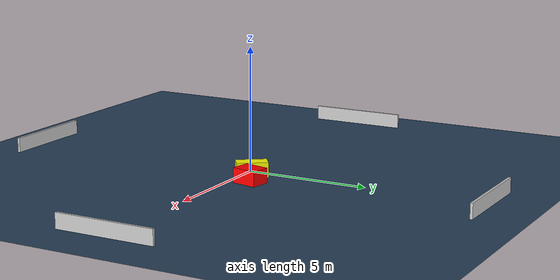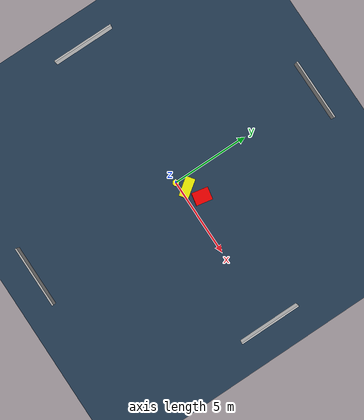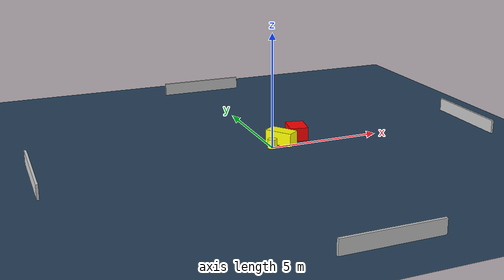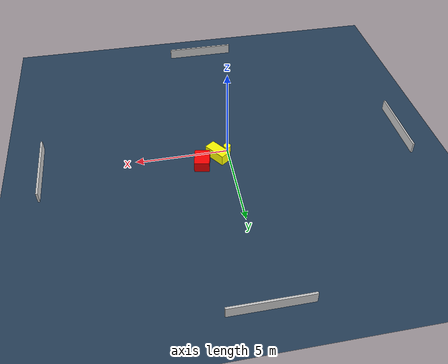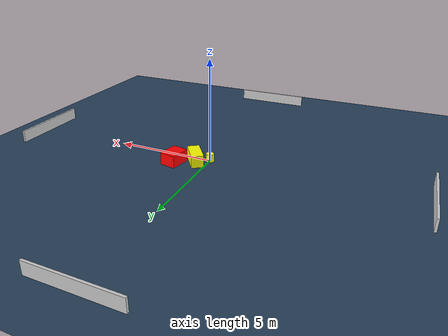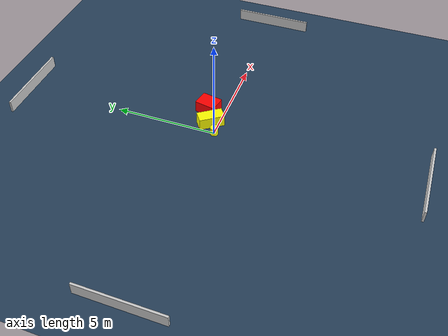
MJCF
<?xml version="1.0" ?>
<mujoco model="generated_environment">
  <option timestep="0.01" integrator="RK4" cone="elliptic"/>
  <default>
    <geom density="1"/>
  </default>
  <asset>
    <texture builtin="gradient" height="3072" name="skybox" rgb1="0.3 0.5 0.7" rgb2="0 0 0" type="skybox" width="512"/>
    <texture builtin="checker" height="300" name="groundplane" rgb1="0.2 0.3 0.4" rgb2="0.1 0.2 0.3" type="2d" width="300"/>
    <material name="groundplane" reflectance="0.2" texrepeat="5 5" texture="groundplane"/>
  </asset>
  <worldbody>
    <light dir="0 0 -1" directional="true" pos="0 0 1.5"/>
    <geom condim="3" friction="0.5 0.005 0.001" material="groundplane" name="floor" pos="0 0 0" size="0 0 0.05" type="plane"/>
    <body name="walls">
      <geom name="wall_1" condim="4" pos="-10.0 0.0 0.3" rgba="0.800000011920929 0.800000011920929 0.800000011920929 1.0" size="0.05 2.0 0.3" type="box"/>
      <geom name="wall_2" condim="4" pos="10.0 0.0 0.3" rgba="0.800000011920929 0.800000011920929 0.800000011920929 1.0" size="0.05 2.0 0.3" type="box"/>
      <geom name="wall_3" condim="4" pos="0.0 -10.0 0.3" rgba="0.800000011920929 0.800000011920929 0.800000011920929 1.0" size="2.0 0.05 0.3" type="box"/>
      <geom name="wall_4" condim="4" pos="0.0 10.0 0.3" rgba="0.800000011920929 0.800000011920929 0.800000011920929 1.0" size="2.0 0.05 0.3" type="box"/>
    </body>
    <body name="robot">
      <joint name="joint_x" type="slide" pos="0 0 0" axis="1 0 0"/>
      <joint name="joint_y" type="slide" pos="0 0 0" axis="0 1 0"/>
      <geom name="robot" type="cylinder" pos="0.0 0.0 0.2" size="0.2 0.2 0.0" mass="5.0" friction="1.0 0.005 0.0001" condim="4" rgba="1.0 1.0 0.0 1.0"/>
    </body>
    <body name="obstacle_1_movable">
      <geom name="obstacle_1_movable" condim="4" pos="0.5993582732520384 0.4031659805616128 0.3" euler="0 0 215.94823929587832" friction="0.0 0.005 0.001" rgba="1.0 1.0 0.0 1.0" size="0.2999839311145363 0.627096578202287 0.3" type="box" mass="0.1"/>
      <joint type="free"/>
    </body>
    <body name="obstacle_2_static">
      <geom name="obstacle_2_static" condim="4" pos="1.5261860993862224 0.8510661488756214 0.3" euler="0 0 259.0376221236083" friction="0.0 0.005 0.001" rgba="1.0 0.0 0.0 1.0" size="0.5205839529057373 0.401504575460906 0.3" type="box"/>
    </body>
  </worldbody>
  <actuator>
    <motor name="actuator_x" joint="joint_x" gear="1" ctrlrange="-1 1"/>
    <motor name="actuator_y" joint="joint_y" gear="1" ctrlrange="-1 1"/>
  </actuator>
</mujoco>
